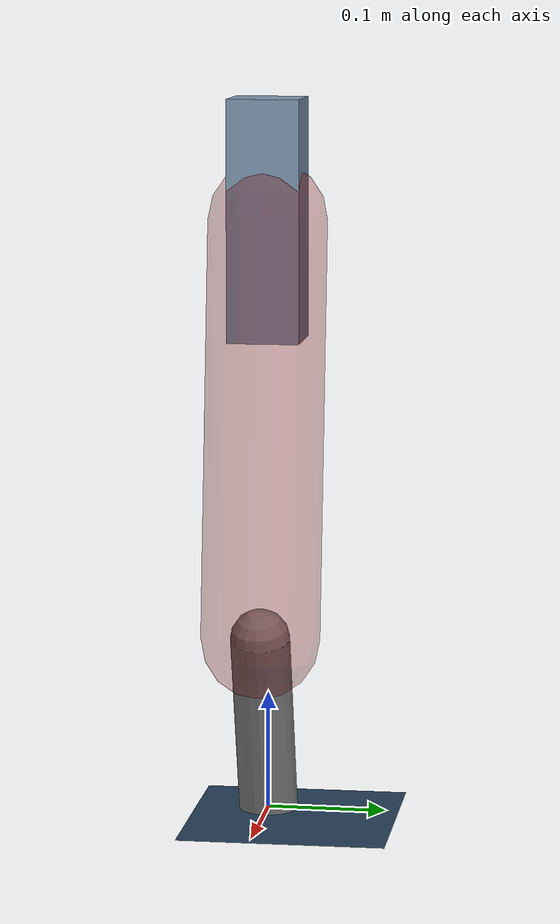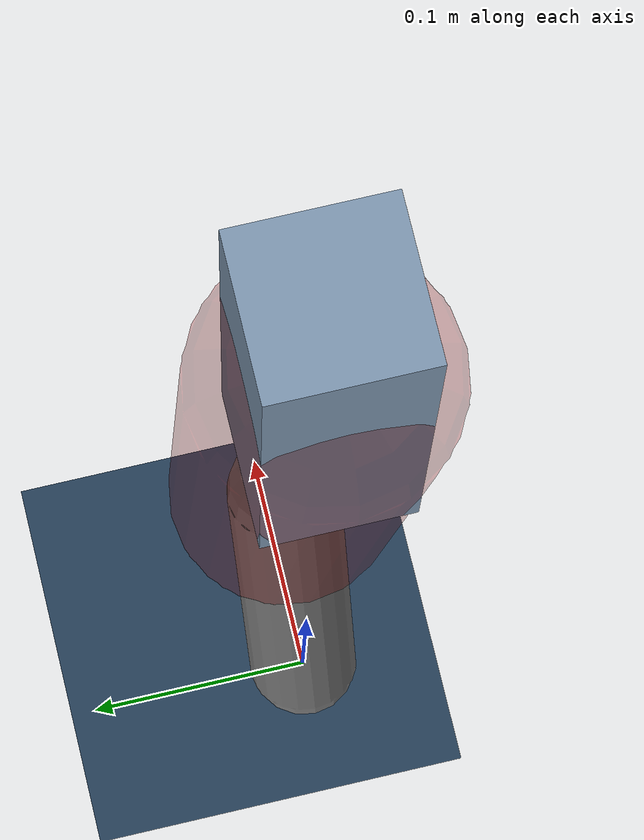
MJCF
<mujoco model="Hopper2D">
	<compiler inertiafromgeom="true" angle="radian" />
	<option timestep="0.001" integrator="implicit" cone="elliptic" solver="Newton" tolerance="1e-10" />

	<default>
		<geom contype="1" conaffinity="1" condim="3" friction="2 0.005 0.0001" solref="0.005 1" />
		<joint limited="true" damping="0.1" />
	</default>

	<asset>
		<texture name="skybox" type="skybox" builtin="gradient" rgb1=".4 .6 .8" rgb2="0 0 0" width="800" height="800" />
		<texture name="grid" type="2d" builtin="checker" rgb1=".1 .2 .3" rgb2=".2 .3 .4" width="300" height="300" mark="edge" markrgb=".2 .3 .4" />
		<material name="ground" texture="grid" texrepeat="1 1" texuniform="true" reflectance="0.1" />
		<material name="leg" rgba="0.5 0.6 0.7 1" />
	</asset>

	<worldbody>

		<geom name="floor" type="plane" size="5 5 0.25" material="ground" />

		<light directional="false" diffuse="0.8 0.8 0.8" specular="0.3 0.3 0.3" pos="0 0 2" dir="0 0 -1" />
		<light mode="targetbodycom" target="base" directional="false" diffuse="0.8 0.8 0.8" specular="0.3 0.3 0.3" pos="0 0 2" dir="0 0 -1" />

		<camera name="fixed" pos="0 -2 1" xyaxes="1 0 0 0 0 1" />
		<camera name="tracking" mode="trackcom" pos="0 -3 1" />

		<body name="root" pos="0 0 0.49987828526549616">
			<joint name="slide_x" type="slide" axis="1 0 0" range="-100 100" />
			<joint name="slide_z" type="slide" axis="0 0 1" range="0 10" />

			<body name="base" pos="0 0 0">
				<geom name="torso" type="box" size="0.03 0.03 0.1" mass="1.464" material="leg" />

				<body name="link1" pos="0 0 0" euler="0 1.435673242576229 0">
					<joint type="hinge" axis="0 -1 0" pos="0 0 0" name="hinge1" limited="true" range="-3.14 3.14" stiffness="0" damping="0.1" />
					<geom name="thigh" type="capsule" fromto="0 0 0 0.34684016126478123 0 0" size="0.05" rgba="0.5 0 0 0.3" mass="1.1178364676678656" />

					<body name="link2" pos="0.34684016126478123 0 0" euler="0 0.42577931201337615 0">
						<joint type="hinge" axis="0 -1 0" pos="0 0 0" name="hinge2" limited="true" range="-3.14 3.14" stiffness="0" damping="0.1" />
						<geom name="shank" type="capsule" fromto="0 0 0 0.16303812400071496 0 0" size="0.025" mass="0.36923431160064346" />

					</body>
				</body>
			</body>
		</body>
	</worldbody>

	<actuator>
		<motor name="torque1" joint="hinge1" ctrlrange="-37.915354350394864 37.915354350394864" ctrllimited="true" gear="1" />
		<motor name="torque2" joint="hinge2" ctrlrange="-28.701330587528187 28.701330587528187" ctrllimited="true" gear="1" />
	</actuator>
</mujoco>
